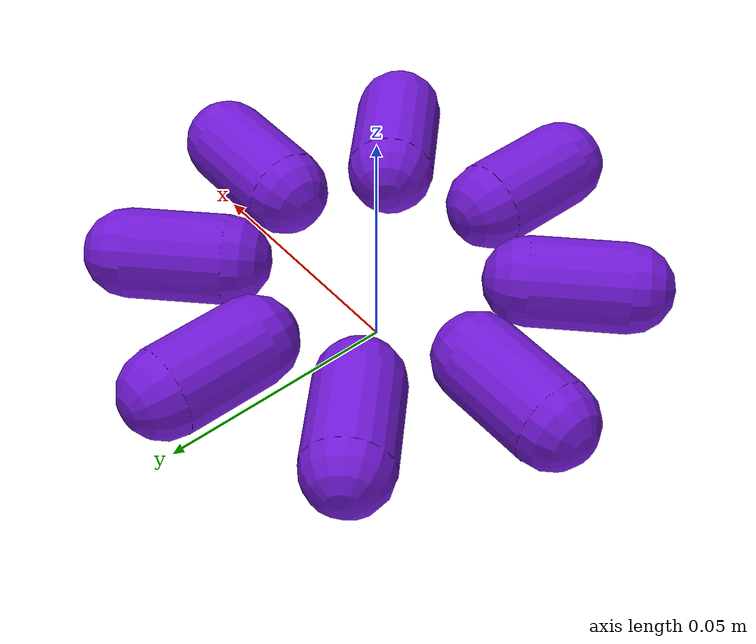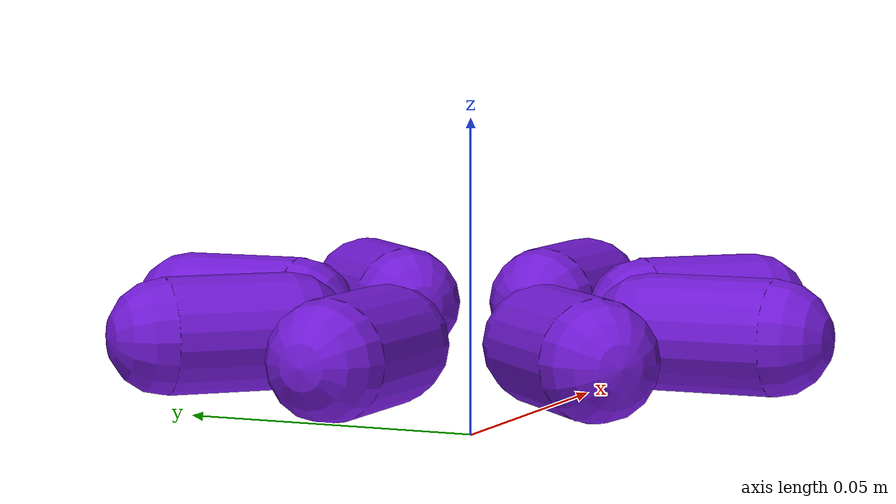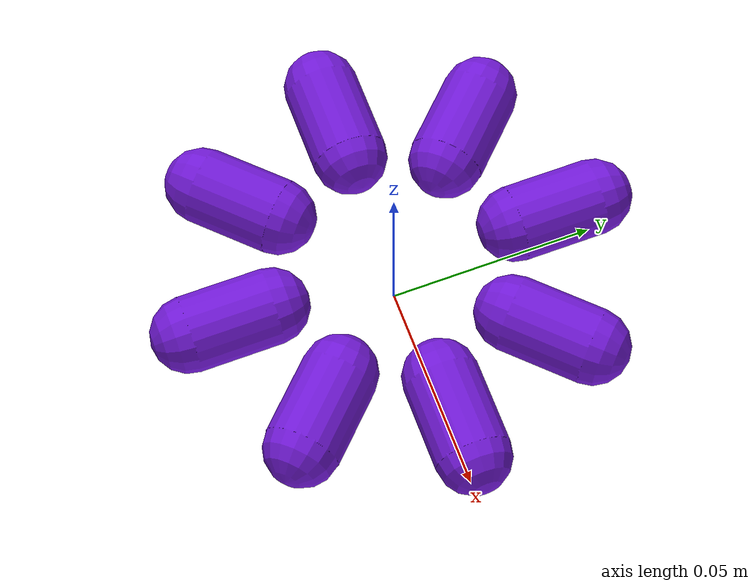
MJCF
<mujoco model="custom_toy_ring">
  <asset>
    <material name="toy_ring_purple" rgba="0.45 0.10 0.85 1"/>
  </asset>
  <worldbody>
    <body>
      <body name="object">
      <geom name="ring_col" type="cylinder" size="0.050 0.010" pos="0 0 0.014" rgba="0 0 0 0" density="180" group="0" contype="1" conaffinity="1"/>
      <geom name="ring_0" type="capsule" fromto="0.030 0 0.018 0.050 0 0.018" size="0.009" material="toy_ring_purple" group="1" contype="0" conaffinity="0"/>
      <geom name="ring_1" type="capsule" fromto="0.021 0.021 0.018 0.035 0.035 0.018" size="0.009" material="toy_ring_purple" group="1" contype="0" conaffinity="0"/>
      <geom name="ring_2" type="capsule" fromto="0 0.030 0.018 0 0.050 0.018" size="0.009" material="toy_ring_purple" group="1" contype="0" conaffinity="0"/>
      <geom name="ring_3" type="capsule" fromto="-0.021 0.021 0.018 -0.035 0.035 0.018" size="0.009" material="toy_ring_purple" group="1" contype="0" conaffinity="0"/>
      <geom name="ring_4" type="capsule" fromto="-0.030 0 0.018 -0.050 0 0.018" size="0.009" material="toy_ring_purple" group="1" contype="0" conaffinity="0"/>
      <geom name="ring_5" type="capsule" fromto="-0.021 -0.021 0.018 -0.035 -0.035 0.018" size="0.009" material="toy_ring_purple" group="1" contype="0" conaffinity="0"/>
      <geom name="ring_6" type="capsule" fromto="0 -0.030 0.018 0 -0.050 0.018" size="0.009" material="toy_ring_purple" group="1" contype="0" conaffinity="0"/>
      <geom name="ring_7" type="capsule" fromto="0.021 -0.021 0.018 0.035 -0.035 0.018" size="0.009" material="toy_ring_purple" group="1" contype="0" conaffinity="0"/>
      <geom name="reg_bbox" type="box" size="0.060 0.060 0.015" pos="0 0 0.015" rgba="0 0 0 0" group="3" contype="0" conaffinity="0"/>
      </body>
      <site name="bottom_site" pos="0 0 0" size="0.005" rgba="0 0 0 0"/>
      <site name="top_site" pos="0 0 0.030" size="0.005" rgba="0 0 0 0"/>
      <site name="horizontal_radius_site" pos="0.060 0 0.015" size="0.005" rgba="0 0 0 0"/>
    </body>
  </worldbody>
</mujoco>
